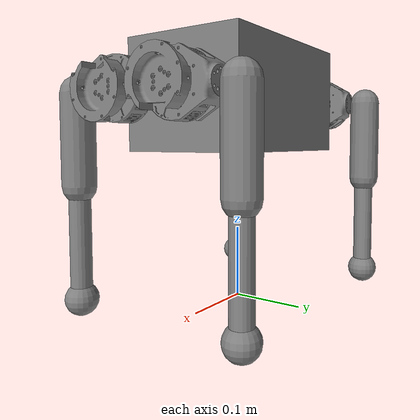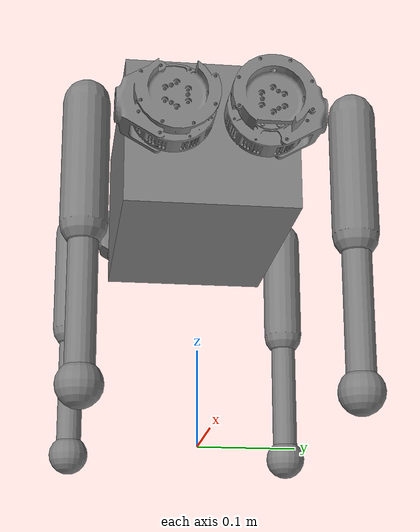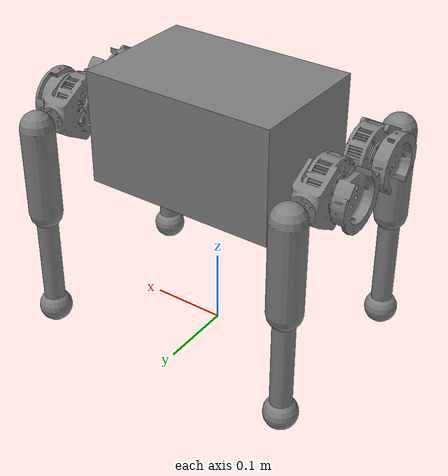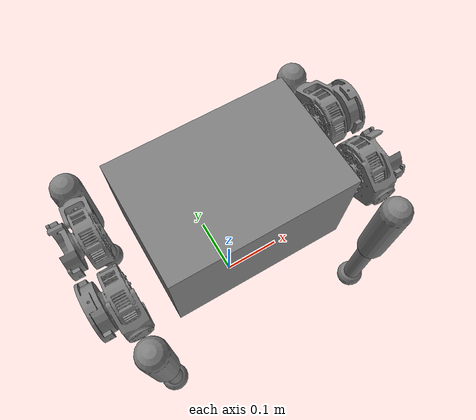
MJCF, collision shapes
<mujoco model="mbf">
  <compiler angle="radian" meshdir="assets" autolimits="true" balanceinertia="true"/>

  <default>
    <default class="robot">
      <default class="hip_joint">
        <joint armature="0.042" damping="2.0"/>
      </default>
      <default class="shoulder_joint">
        <joint armature="0.042" damping="2.0"/>
      </default>
      <default class="knee_joint">
        <joint armature="0.042" damping="1.5"/>
      </default>
      <default class="visual">
        <geom type="mesh" contype="0" conaffinity="0" group="2"/>
      </default>
      <default class="collision">
        <geom type="mesh" contype="1" conaffinity="1" group="3"/>
        <default class="foot">
          <geom type="sphere" size="0.02"/>
        </default>
      </default>
    </default>
  </default>

  <asset>
    <material name="chassis_material" rgba="0.615686 0.811765 0.929412 1"/>
    <material name="shoulder_material" rgba="0.74902 0.74902 0.74902 1"/>
    <mesh name="chassis"  file="chassis.stl"/>
    <mesh name="shoulder" file="shoulder.stl"/>
    <mesh name="hip"      file="hip.stl"/>
    <mesh name="knee"     file="knee.stl"/>
  </asset>

  <worldbody>
    <body name="chassis" pos="0 0 0.2882" childclass="robot">
      <freejoint name="floating_base"/>
      <inertial pos="0.00019173 0.000440232 -0.00216668" mass="2.0"
        diaginertia="0.00952998 0.0135426 0.0186649"/>
      <camera name="tracking" pos="0.846 -1.3 0.316"
        xyaxes="0.866 0.500 0.000 -0.171 0.296 0.940" mode="trackcom"/>
      <camera name="side" pos="0 -1 .3" xyaxes="1 0 0 0 1 2" mode="trackcom"/>
      <camera name="back" pos="-1 0 .3" xyaxes="0 -1 0 1 0 2" mode="trackcom"/>
      <site name="imu" pos="0 0 0" group="5"/>
      <geom name="chassis_collision" type="box" size="0.129 0.0875 0.075" class="collision"/>
      <geom name="chassis_visual" type="box" size="0.129 0.0875 0.075"
        material="chassis_material" class="visual"/>

      <body name="fl_shoulder_link" pos="0.1805 0.045 0">
        <inertial pos="-0.00572995 0.00737753 -1.10852e-06" mass="0.4"
          diaginertia="0.000212246 0.000383001 0.000318608"/>
        <joint name="fl_shoulder_joint" class="shoulder_joint"
          axis="1 0 0" range="-1.0472 1.0472"/>
        <geom name="fl_shoulder_link_collision" quat="0 -1 0 0" mesh="shoulder" class="collision"/>
        <geom name="fl_shoulder_link_visual" quat="0 -1 0 0" mesh="shoulder"
          material="shoulder_material" class="visual"/>
        <body name="fl_hip_link" pos="0 0.081 0">
          <inertial pos="-0.000800701 -0.0108187 -0.0228388" mass="0.6"
            diaginertia="0.00131344 0.00134942 0.000412562"/>
          <joint name="fl_hip_joint" class="hip_joint"
            axis="0 1 0" range="-1.5708 3.5"/>
          <geom name="fl_hip_link_collision" type="capsule" size="0.022" fromto="0 0 0 0 0 -0.12" class="collision"/>
          <geom name="fl_hip_link_visual" quat="0.7071 0 0 0.7071" mesh="hip"
            material="shoulder_material" class="visual"/>
          <body name="fl_knee_link" pos="0 0 -0.12">
            <inertial pos="0.000101397 0.000101309 -0.0636801" mass="0.15"
              diaginertia="0.000316741 0.000318933 1.8258e-05"/>
            <joint name="fl_knee_joint" class="knee_joint"
              axis="0 1 0" range="-2.5 0"/>
            <geom name="fl_knee_link_collision" type="capsule" size="0.014" fromto="0 0 0 0 0 -0.148" class="collision"/>
            <geom name="fl_knee_link_visual" quat="0.7071 0 0 -0.7071" mesh="knee"
              material="chassis_material" class="visual"/>
            <body name="fl_foot_link" pos="-0.000288395 0 -0.148233">
              <inertial pos="0 0 0" mass="0.025" diaginertia="4e-06 4e-06 4e-06"/>
              <geom name="fl_foot_visual" type="sphere" size="0.022"/>
              <site name="fl_foot" pos="0 0 0" type="sphere" size="0.022"/>
              <geom name="fl_foot_collision" class="foot"/>
            </body>
          </body>
        </body>
      </body>

      <body name="fr_shoulder_link" pos="0.1805 -0.045 0">
        <inertial pos="-0.00572995 -0.00737753 1.10852e-06" mass="0.4"
          diaginertia="0.000212246 0.000383001 0.000318608"/>
        <joint name="fr_shoulder_joint" class="shoulder_joint"
          axis="1 0 0" range="-1.0472 1.0472"/>
        <geom name="fr_shoulder_link_collision" mesh="shoulder" class="collision"/>
        <geom name="fr_shoulder_link_visual" mesh="shoulder"
          material="shoulder_material" class="visual"/>
        <body name="fr_hip_link" pos="0 -0.081 0">
          <inertial pos="0.000800701 0.0108187 -0.0228388" mass="0.6"
            diaginertia="0.00131344 0.00134942 0.000412562"/>
          <joint name="fr_hip_joint" class="hip_joint"
            axis="0 1 0" range="-1.5708 3.5"/>
          <geom name="fr_hip_link_collision" type="capsule" size="0.022" fromto="0 0 0 0 0 -0.12" class="collision"/>
          <geom name="fr_hip_link_visual" quat="0.7071 0 0 -0.7071" mesh="hip"
            material="shoulder_material" class="visual"/>
          <body name="fr_knee_link" pos="0 0 -0.12">
            <inertial pos="0.000101397 0.000101309 -0.0636801" mass="0.15"
              diaginertia="0.000316741 0.000318933 1.8258e-05"/>
            <joint name="fr_knee_joint" class="knee_joint"
              axis="0 1 0" range="-2.5 0"/>
            <geom name="fr_knee_link_collision" type="capsule" size="0.014" fromto="0 0 0 0 0 -0.148" class="collision"/>
            <geom name="fr_knee_link_visual" quat="0.7071 0 0 -0.7071" mesh="knee"
              material="chassis_material" class="visual"/>
            <body name="fr_foot_link" pos="-0.000288395 0 -0.148233">
              <inertial pos="0 0 0" mass="0.025" diaginertia="4e-06 4e-06 4e-06"/>
              <geom name="fr_foot_visual" type="sphere" size="0.022"/>
              <site name="fr_foot" pos="0 0 0" type="sphere" size="0.022"/>
              <geom name="fr_foot_collision" class="foot"/>
            </body>
          </body>
        </body>
      </body>

      <body name="rl_shoulder_link" pos="-0.1805 0.045 0">
        <inertial pos="0.00572995 0.00737753 1.10852e-06" mass="0.4"
          diaginertia="0.000212246 0.000383001 0.000318608"/>
        <joint name="rl_shoulder_joint" class="shoulder_joint"
          axis="1 0 0" range="-1.0472 1.0472"/>
        <geom name="rl_shoulder_link_collision" quat="0 0 0 1" mesh="shoulder" class="collision"/>
        <geom name="rl_shoulder_link_visual" quat="0 0 0 1" mesh="shoulder"
          material="shoulder_material" class="visual"/>
        <body name="rl_hip_link" pos="0 0.081 0">
          <inertial pos="-0.000800701 -0.0108187 -0.0228388" mass="0.6"
            diaginertia="0.00131344 0.00134942 0.000412562"/>
          <joint name="rl_hip_joint" class="hip_joint"
            axis="0 1 0" range="-1.5708 3.5"/>
          <geom name="rl_hip_link_collision" type="capsule" size="0.022" fromto="0 0 0 0 0 -0.12" class="collision"/>
          <geom name="rl_hip_link_visual" quat="0.7071 0 0 0.7071" mesh="hip"
            material="shoulder_material" class="visual"/>
          <body name="rl_knee_link" pos="0 0 -0.12">
            <inertial pos="0.000101397 0.000101309 -0.0636801" mass="0.15"
              diaginertia="0.000316741 0.000318933 1.8258e-05"/>
            <joint name="rl_knee_joint" class="knee_joint"
              axis="0 1 0" range="-2.5 0"/>
            <geom name="rl_knee_link_collision" type="capsule" size="0.014" fromto="0 0 0 0 0 -0.148" class="collision"/>
            <geom name="rl_knee_link_visual" quat="0.7071 0 0 -0.7071" mesh="knee"
              material="chassis_material" class="visual"/>
            <body name="rl_foot_link" pos="-0.000288395 0 -0.148233">
              <inertial pos="0 0 0" mass="0.025" diaginertia="4e-06 4e-06 4e-06"/>
              <geom name="rl_foot_visual" type="sphere" size="0.022"/>
              <site name="rl_foot" pos="0 0 0" type="sphere" size="0.022"/>
              <geom name="rl_foot_collision" class="foot"/>
            </body>
          </body>
        </body>
      </body>

      <body name="rr_shoulder_link" pos="-0.1805 -0.045 0">
        <inertial pos="0.00572995 -0.00737753 -1.10852e-06" mass="0.4"
          diaginertia="0.000212246 0.000383001 0.000318608"/>
        <joint name="rr_shoulder_joint" class="shoulder_joint"
          axis="1 0 0" range="-1.0472 1.0472"/>
        <geom name="rr_shoulder_link_collision" quat="0 0 1 0" mesh="shoulder" class="collision"/>
        <geom name="rr_shoulder_link_visual" quat="0 0 1 0" mesh="shoulder"
          material="shoulder_material" class="visual"/>
        <body name="rr_hip_link" pos="0 -0.081 0">
          <inertial pos="0.000800701 0.0108187 -0.0228388" mass="0.6"
            diaginertia="0.00131344 0.00134942 0.000412562"/>
          <joint name="rr_hip_joint" class="hip_joint"
            axis="0 1 0" range="-1.5708 3.5"/>
          <geom name="rr_hip_link_collision" type="capsule" size="0.022" fromto="0 0 0 0 0 -0.12" class="collision"/>
          <geom name="rr_hip_link_visual" quat="0.7071 0 0 -0.7071" mesh="hip"
            material="shoulder_material" class="visual"/>
          <body name="rr_knee_link" pos="0 0 -0.12">
            <inertial pos="0.000101397 0.000101309 -0.0636801" mass="0.15"
              diaginertia="0.000316741 0.000318933 1.8258e-05"/>
            <joint name="rr_knee_joint" class="knee_joint"
              axis="0 1 0" range="-2.5 0"/>
            <geom name="rr_knee_link_collision" type="capsule" size="0.014" fromto="0 0 0 0 0 -0.148" class="collision"/>
            <geom name="rr_knee_link_visual" quat="0.7071 0 0 -0.7071" mesh="knee"
              material="chassis_material" class="visual"/>
            <body name="rr_foot_link" pos="-0.000288395 0 -0.148233">
              <inertial pos="0 0 0" mass="0.025" diaginertia="4e-06 4e-06 4e-06"/>
              <geom name="rr_foot_visual" type="sphere" size="0.022"/>
              <site name="rr_foot" pos="0 0 0" type="sphere" size="0.022"/>
              <geom name="rr_foot_collision" class="foot"/>
            </body>
          </body>
        </body>
      </body>
    </body>
  </worldbody>

  <sensor>
    <velocimeter name="imu_lin_vel" site="imu"/>
    <gyro name="imu_ang_vel" site="imu"/>
    <subtreeangmom name="root_angmom" body="chassis"/>
  </sensor>
</mujoco>
